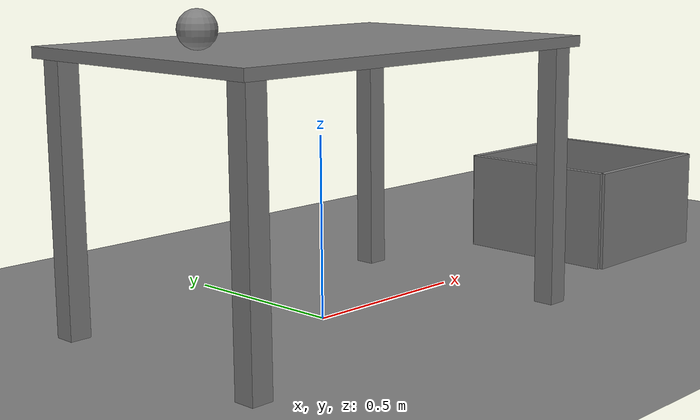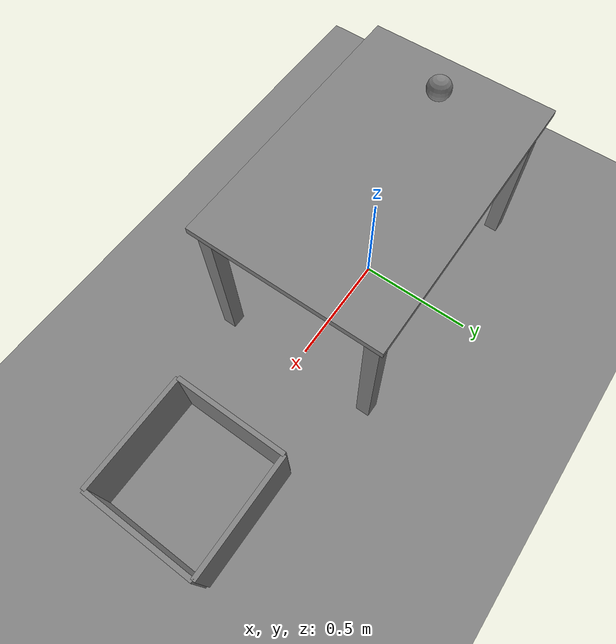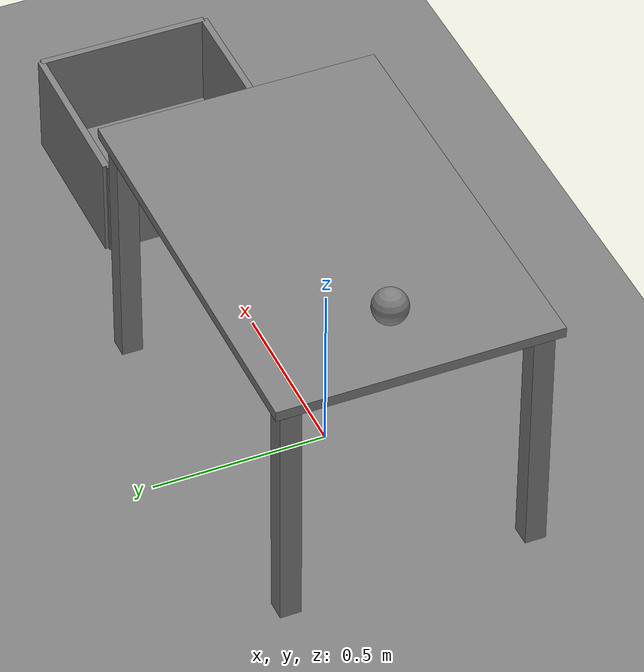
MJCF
<mujoco model="ledge_fixture">
  <option timestep="0.002"/>
  <worldbody>
    <geom name="floor" type="plane" size="5 5 0.1"/>
    <geom name="table_top" type="box" pos="0 0 0.735" size="0.6 0.4 0.015"/>
    <geom name="table_leg1" type="box" pos="-0.55 -0.35 0.36" size="0.03 0.03 0.36"/>
    <geom name="table_leg2" type="box" pos="-0.55 0.35 0.36" size="0.03 0.03 0.36"/>
    <geom name="table_leg3" type="box" pos="0.55 -0.35 0.36" size="0.03 0.03 0.36"/>
    <geom name="table_leg4" type="box" pos="0.55 0.35 0.36" size="0.03 0.03 0.36"/>
    <body name="ball" pos="-0.4 0 0.8">
      <freejoint/>
      <geom name="ball" type="sphere" size="0.05" mass="0.2"/>
    </body>
    <body name="bucket" pos="1.2 0 0">
      <geom name="bucket_base" type="box" pos="0 0 0.01" size="0.25 0.25 0.01"/>
      <geom name="bucket_near" type="box" pos="-0.25 0 0.15" size="0.01 0.25 0.15"/>
      <geom name="bucket_far" type="box" pos="0.25 0 0.15" size="0.01 0.25 0.15"/>
      <geom name="bucket_left" type="box" pos="0 0.25 0.15" size="0.25 0.01 0.15"/>
      <geom name="bucket_right" type="box" pos="0 -0.25 0.15" size="0.25 0.01 0.15"/>
    </body>
  </worldbody>
  <keyframe>
    <key name="start" qpos="-0.4 0 0.8 1 0 0 0" qvel="1.8 0 0 0 0 0"/>
  </keyframe>
</mujoco>
